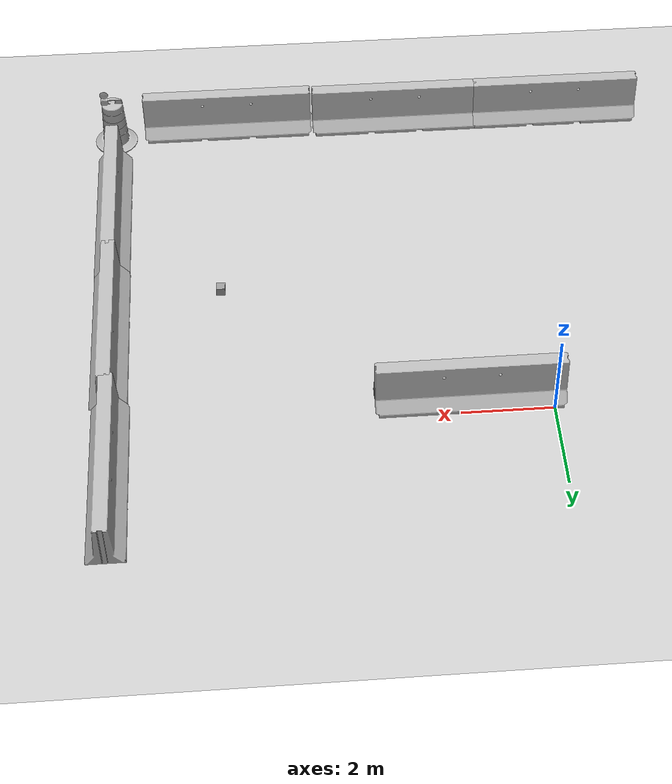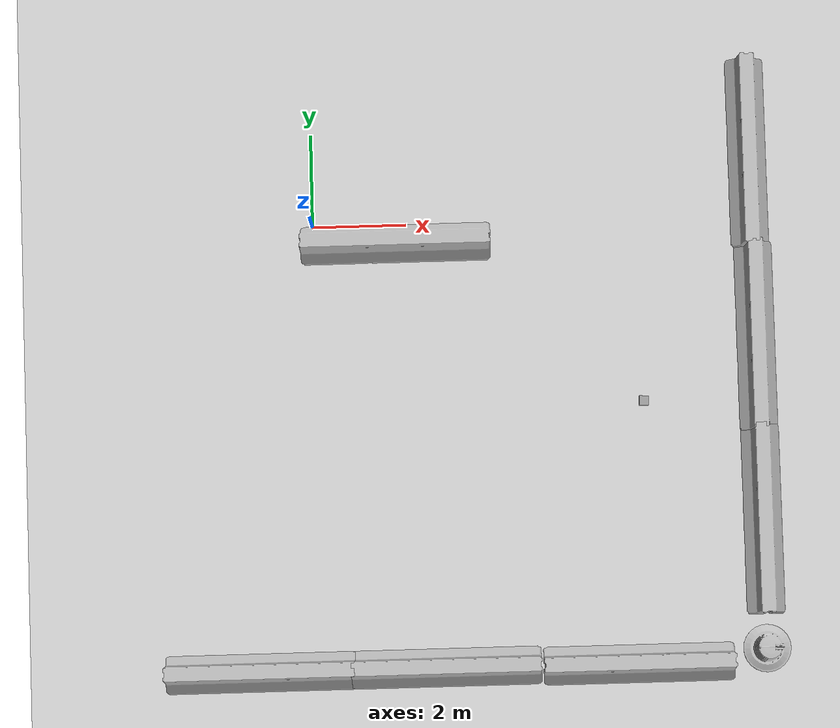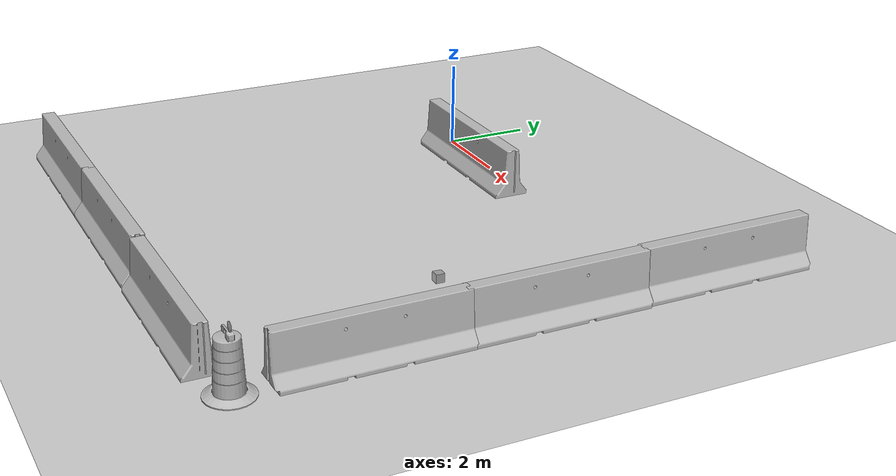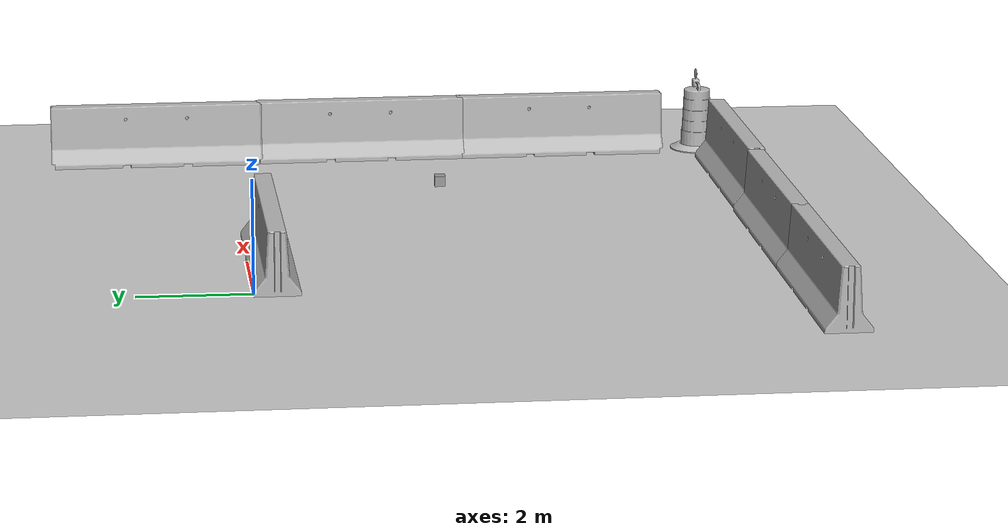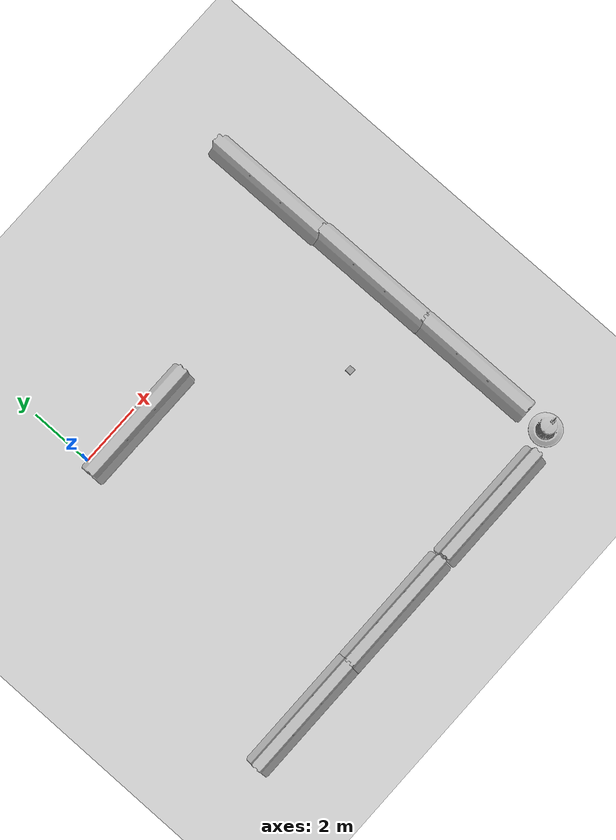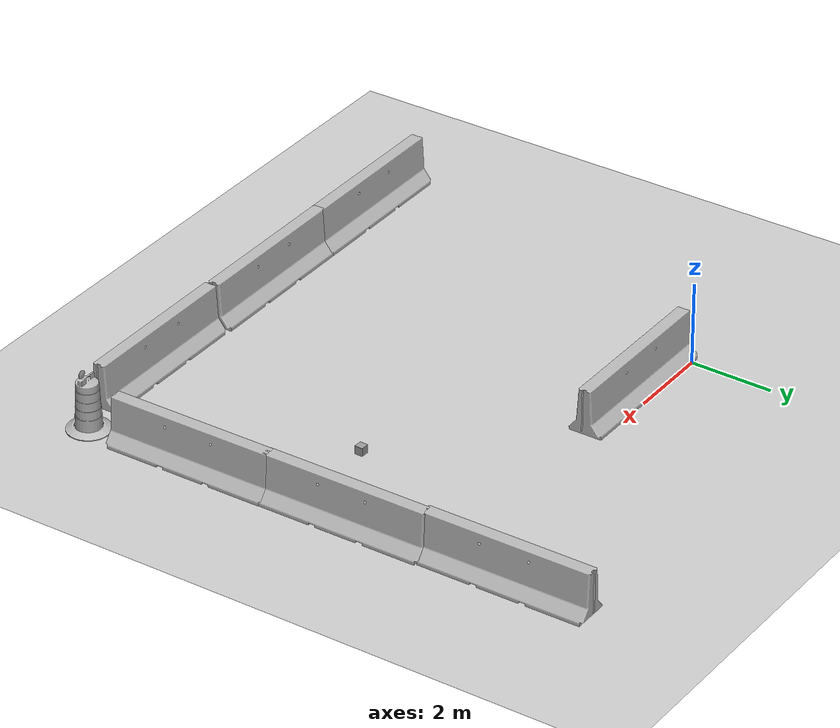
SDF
<sdf version="1.7">
 <world name="default" frame="map">
  <model name="ground_plane">
   <static>1</static>
   <link name="link">
    <collision name="collision">
     <geometry><plane><normal>0 0 1</normal><size>100 100</size></plane></geometry>
     <surface><friction><ode><mu>100</mu><mu2>50</mu2></ode></friction></surface>
    </collision>
    <visual name="visual">
     <cast_shadows>0</cast_shadows>
     <geometry><plane><normal>0 0 1</normal><size>100 100</size></plane></geometry>
     <material>
      <script><uri>file://media/materials/scripts/gazebo.material</uri><name>Gazebo/Grey</name></script>
     </material>
    </visual>
   </link>
  </model>
  <model name="jersey_barrier_clone_3_clone">
   <static>1</static>
   <link name="link">
    <visual name="visual">
     <geometry><mesh><uri>model://jersey_barrier/meshes/jersey_barrier.dae</uri></mesh></geometry>
    </visual>
    <collision name="upright">
     <pose>0 0 0.5715 0 -0 0</pose>
     <geometry><box><size>4.06542 0.3063 1.143</size></box></geometry>
    </collision>
    <collision name="base">
     <pose>0 0 0.032258 0 -0 0</pose>
     <geometry><box><size>4.06542 0.8107 0.064516</size></box></geometry>
    </collision>
    <collision name="base2">
     <pose>0 0 0.1 0 -0 0</pose>
     <geometry><box><size>4.06542 0.65 0.1</size></box></geometry>
    </collision>
    <collision name="base3">
     <pose>0 0 0.2 0 -0 0</pose>
     <geometry><box><size>4.06542 0.5 0.1</size></box></geometry>
    </collision>
    <collision name="left-angle">
     <pose>0 -0.224 0.2401 0.9 -0 0</pose>
     <geometry><box><size>4.06542 0.5 0.064516</size></box></geometry>
    </collision>
    <collision name="right-angle">
     <pose>0 0.224 0.2401 -0.9 0 0</pose>
     <geometry><box><size>4.06542 0.5 0.064516</size></box></geometry>
    </collision>
   </link>
   <pose>9.3727 1.33119 0 0 0 -1.56865</pose>
  </model>
  <model name="jersey_barrier_clone_3_clone_0">
   <static>1</static>
   <link name="link">
    <visual name="visual">
     <geometry><mesh><uri>model://jersey_barrier/meshes/jersey_barrier.dae</uri></mesh></geometry>
    </visual>
    <collision name="upright">
     <pose>0 0 0.5715 0 -0 0</pose>
     <geometry><box><size>4.06542 0.3063 1.143</size></box></geometry>
    </collision>
    <collision name="base">
     <pose>0 0 0.032258 0 -0 0</pose>
     <geometry><box><size>4.06542 0.8107 0.064516</size></box></geometry>
    </collision>
    <collision name="base2">
     <pose>0 0 0.1 0 -0 0</pose>
     <geometry><box><size>4.06542 0.65 0.1</size></box></geometry>
    </collision>
    <collision name="base3">
     <pose>0 0 0.2 0 -0 0</pose>
     <geometry><box><size>4.06542 0.5 0.1</size></box></geometry>
    </collision>
    <collision name="left-angle">
     <pose>0 -0.224 0.2401 0.9 -0 0</pose>
     <geometry><box><size>4.06542 0.5 0.064516</size></box></geometry>
    </collision>
    <collision name="right-angle">
     <pose>0 0.224 0.2401 -0.9 0 0</pose>
     <geometry><box><size>4.06542 0.5 0.064516</size></box></geometry>
    </collision>
   </link>
   <pose>9.4315 -2.6268 0 0 0 -1.56865</pose>
  </model>
  <model name="jersey_barrier_clone_3_clone_1">
   <static>1</static>
   <link name="link">
    <visual name="visual">
     <geometry><mesh><uri>model://jersey_barrier/meshes/jersey_barrier.dae</uri></mesh></geometry>
    </visual>
    <collision name="upright">
     <pose>0 0 0.5715 0 -0 0</pose>
     <geometry><box><size>4.06542 0.3063 1.143</size></box></geometry>
    </collision>
    <collision name="base">
     <pose>0 0 0.032258 0 -0 0</pose>
     <geometry><box><size>4.06542 0.8107 0.064516</size></box></geometry>
    </collision>
    <collision name="base2">
     <pose>0 0 0.1 0 -0 0</pose>
     <geometry><box><size>4.06542 0.65 0.1</size></box></geometry>
    </collision>
    <collision name="base3">
     <pose>0 0 0.2 0 -0 0</pose>
     <geometry><box><size>4.06542 0.5 0.1</size></box></geometry>
    </collision>
    <collision name="left-angle">
     <pose>0 -0.224 0.2401 0.9 -0 0</pose>
     <geometry><box><size>4.06542 0.5 0.064516</size></box></geometry>
    </collision>
    <collision name="right-angle">
     <pose>0 0.224 0.2401 -0.9 0 0</pose>
     <geometry><box><size>4.06542 0.5 0.064516</size></box></geometry>
    </collision>
   </link>
   <pose>9.44969 -6.53485 0 0 0 -1.56865</pose>
  </model>
  <model name="jersey_barrier_clone_2_clone">
   <static>1</static>
   <link name="link">
    <visual name="visual">
     <geometry><mesh><uri>model://jersey_barrier/meshes/jersey_barrier.dae</uri></mesh></geometry>
    </visual>
    <collision name="upright">
     <pose>0 0 0.5715 0 -0 0</pose>
     <geometry><box><size>4.06542 0.3063 1.143</size></box></geometry>
    </collision>
    <collision name="base">
     <pose>0 0 0.032258 0 -0 0</pose>
     <geometry><box><size>4.06542 0.8107 0.064516</size></box></geometry>
    </collision>
    <collision name="base2">
     <pose>0 0 0.1 0 -0 0</pose>
     <geometry><box><size>4.06542 0.65 0.1</size></box></geometry>
    </collision>
    <collision name="base3">
     <pose>0 0 0.2 0 -0 0</pose>
     <geometry><box><size>4.06542 0.5 0.1</size></box></geometry>
    </collision>
    <collision name="left-angle">
     <pose>0 -0.224 0.2401 0.9 -0 0</pose>
     <geometry><box><size>4.06542 0.5 0.064516</size></box></geometry>
    </collision>
    <collision name="right-angle">
     <pose>0 0.224 0.2401 -0.9 0 0</pose>
     <geometry><box><size>4.06542 0.5 0.064516</size></box></geometry>
    </collision>
   </link>
   <pose>6.70657 -9.54347 0 0 -0 0</pose>
  </model>
  <model name="jersey_barrier_clone_2_clone_0">
   <static>1</static>
   <link name="link">
    <visual name="visual">
     <geometry><mesh><uri>model://jersey_barrier/meshes/jersey_barrier.dae</uri></mesh></geometry>
    </visual>
    <collision name="upright">
     <pose>0 0 0.5715 0 -0 0</pose>
     <geometry><box><size>4.06542 0.3063 1.143</size></box></geometry>
    </collision>
    <collision name="base">
     <pose>0 0 0.032258 0 -0 0</pose>
     <geometry><box><size>4.06542 0.8107 0.064516</size></box></geometry>
    </collision>
    <collision name="base2">
     <pose>0 0 0.1 0 -0 0</pose>
     <geometry><box><size>4.06542 0.65 0.1</size></box></geometry>
    </collision>
    <collision name="base3">
     <pose>0 0 0.2 0 -0 0</pose>
     <geometry><box><size>4.06542 0.5 0.1</size></box></geometry>
    </collision>
    <collision name="left-angle">
     <pose>0 -0.224 0.2401 0.9 -0 0</pose>
     <geometry><box><size>4.06542 0.5 0.064516</size></box></geometry>
    </collision>
    <collision name="right-angle">
     <pose>0 0.224 0.2401 -0.9 0 0</pose>
     <geometry><box><size>4.06542 0.5 0.064516</size></box></geometry>
    </collision>
   </link>
   <pose>2.59616 -9.50928 0 0 -0 0</pose>
  </model>
  <model name="jersey_barrier_clone_2_clone_1">
   <static>1</static>
   <link name="link">
    <visual name="visual">
     <geometry><mesh><uri>model://jersey_barrier/meshes/jersey_barrier.dae</uri></mesh></geometry>
    </visual>
    <collision name="upright">
     <pose>0 0 0.5715 0 -0 0</pose>
     <geometry><box><size>4.06542 0.3063 1.143</size></box></geometry>
    </collision>
    <collision name="base">
     <pose>0 0 0.032258 0 -0 0</pose>
     <geometry><box><size>4.06542 0.8107 0.064516</size></box></geometry>
    </collision>
    <collision name="base2">
     <pose>0 0 0.1 0 -0 0</pose>
     <geometry><box><size>4.06542 0.65 0.1</size></box></geometry>
    </collision>
    <collision name="base3">
     <pose>0 0 0.2 0 -0 0</pose>
     <geometry><box><size>4.06542 0.5 0.1</size></box></geometry>
    </collision>
    <collision name="left-angle">
     <pose>0 -0.224 0.2401 0.9 -0 0</pose>
     <geometry><box><size>4.06542 0.5 0.064516</size></box></geometry>
    </collision>
    <collision name="right-angle">
     <pose>0 0.224 0.2401 -0.9 0 0</pose>
     <geometry><box><size>4.06542 0.5 0.064516</size></box></geometry>
    </collision>
   </link>
   <pose>-1.33414 -9.50852 0 0 -0 0</pose>
  </model>
  <model name="Construction Barrel_3">
   <link name="link">
    <inertial>
     <pose>0 0 0.4 0 -0 0</pose>
     <mass>500</mass>
     <inertia><ixx>51.2096</ixx><iyy>51.2096</iyy><izz>25</izz><ixy>0</ixy><ixz>0</ixz><iyz>0</iyz></inertia>
    </inertial>
    <collision name="collision">
     <geometry><mesh><uri>model://construction_barrel/meshes/construction_barrel.dae</uri></mesh></geometry>
    </collision>
    <visual name="visual">
     <geometry><mesh><uri>model://construction_barrel/meshes/construction_barrel.dae</uri></mesh></geometry>
    </visual>
   </link>
   <pose>9.45363 -9.2943 -1e-06 3e-06 -0 -4.5e-05</pose>
  </model>
  <model name="jersey_barrier_0_clone_1_clone">
   <static>1</static>
   <link name="link">
    <visual name="visual">
     <geometry><mesh><uri>model://jersey_barrier/meshes/jersey_barrier.dae</uri></mesh></geometry>
    </visual>
    <collision name="upright">
     <pose>0 0 0.5715 0 -0 0</pose>
     <geometry><box><size>4.06542 0.3063 1.143</size></box></geometry>
    </collision>
    <collision name="base">
     <pose>0 0 0.032258 0 -0 0</pose>
     <geometry><box><size>4.06542 0.8107 0.064516</size></box></geometry>
    </collision>
    <collision name="base2">
     <pose>0 0 0.1 0 -0 0</pose>
     <geometry><box><size>4.06542 0.65 0.1</size></box></geometry>
    </collision>
    <collision name="base3">
     <pose>0 0 0.2 0 -0 0</pose>
     <geometry><box><size>4.06542 0.5 0.1</size></box></geometry>
    </collision>
    <collision name="left-angle">
     <pose>0 -0.224 0.2401 0.9 -0 0</pose>
     <geometry><box><size>4.06542 0.5 0.064516</size></box></geometry>
    </collision>
    <collision name="right-angle">
     <pose>0 0.224 0.2401 -0.9 0 0</pose>
     <geometry><box><size>4.06542 0.5 0.064516</size></box></geometry>
    </collision>
   </link>
   <pose>1.76519 -0.393386 0 0 -0 0</pose>
  </model>
  <model name="marker12_box">
   <link name="marker">
    <inertial>
     <mass>0.1</mass>
     <inertia><ixx>0</ixx><ixy>0</ixy><ixz>0</ixz><iyy>0</iyy><iyz>0</iyz><izz>0</izz></inertia>
    </inertial>
    <self_collide>1</self_collide>
    <pose>-0.76428 -0.101106 0.120004 -0.015494 1.56996 -0.015507</pose>
    <visual name="visual">
     <geometry><box><size>0.2 0.2 0.001</size></box></geometry>
     <material>
      <script>
       <uri>model://marker12/material/scripts</uri>
       <uri>model://marker12/material/textures</uri>
       <name>Aruco/marker12</name>
      </script>
      <shader type="pixel"><normal_map>__default__</normal_map></shader>
      <emissive>0 0 0 1</emissive>
      <ambient>1 1 1 1</ambient>
      <diffuse>1 1 1 1</diffuse>
      <specular>0 0 0 1</specular>
     </material>
    </visual>
    <collision name="collision">
     <geometry><box><size>0.2 0.2 0.02</size></box></geometry>
     <surface>
      <friction>
       <ode><mu>1</mu><mu2>1</mu2><fdir1>0 0 0</fdir1><slip1>0</slip1><slip2>0</slip2></ode>
       <torsional>
        <coefficient>1</coefficient>
        <patch_radius>0</patch_radius>
        <surface_radius>0</surface_radius>
        <use_patch_radius>1</use_patch_radius>
        <ode><slip>0</slip></ode>
       </torsional>
      </friction>
      <bounce><restitution_coefficient>0</restitution_coefficient><threshold>1e+06</threshold></bounce>
      <contact>
       <collide_without_contact>0</collide_without_contact>
       <collide_without_contact_bitmask>1</collide_without_contact_bitmask>
       <collide_bitmask>1</collide_bitmask>
       <ode>
        <soft_cfm>0</soft_cfm>
        <soft_erp>0.2</soft_erp>
        <kp>1e+13</kp>
        <kd>1</kd>
        <max_vel>0.01</max_vel>
        <min_depth>0</min_depth>
       </ode>
       <bullet>
        <split_impulse>1</split_impulse>
        <split_impulse_penetration_threshold>-0.01</split_impulse_penetration_threshold>
        <soft_cfm>0</soft_cfm>
        <soft_erp>0.2</soft_erp>
        <kp>1e+13</kp>
        <kd>1</kd>
       </bullet>
      </contact>
     </surface>
    </collision>
   </link>
   <link name="link_1">
    <inertial>
     <mass>1</mass>
     <inertia>
      <ixx>0.166667</ixx>
      <ixy>0</ixy>
      <ixz>0</ixz>
      <iyy>0.166667</iyy>
      <iyz>0</iyz>
      <izz>0.166667</izz>
     </inertia>
    </inertial>
    <pose>-0.86428 -0.101106 0.12 -1.3e-05 -4.2e-05 0</pose>
    <visual name="visual">
     <geometry><box><size>0.2 0.2 0.2</size></box></geometry>
     <material>
      <lighting>1</lighting>
      <script><uri>file://media/materials/scripts/gazebo.material</uri><name>Gazebo/Grey</name></script>
      <shader type="pixel"><normal_map>__default__</normal_map></shader>
      <emissive>0 0 0 1</emissive>
      <ambient>0.3 0.3 0.3 1</ambient>
      <diffuse>0.7 0.7 0.7 1</diffuse>
      <specular>0.01 0.01 0.01 1</specular>
     </material>
    </visual>
    <collision name="collision">
     <geometry><box><size>0.2 0.2 0.2</size></box></geometry>
     <surface>
      <friction>
       <ode><mu>1</mu><mu2>1</mu2><fdir1>0 0 0</fdir1><slip1>0</slip1><slip2>0</slip2></ode>
       <torsional>
        <coefficient>1</coefficient>
        <patch_radius>0</patch_radius>
        <surface_radius>0</surface_radius>
        <use_patch_radius>1</use_patch_radius>
        <ode><slip>0</slip></ode>
       </torsional>
      </friction>
      <bounce><restitution_coefficient>0</restitution_coefficient><threshold>1e+06</threshold></bounce>
      <contact>
       <collide_without_contact>0</collide_without_contact>
       <collide_without_contact_bitmask>1</collide_without_contact_bitmask>
       <collide_bitmask>1</collide_bitmask>
       <ode>
        <soft_cfm>0</soft_cfm>
        <soft_erp>0.2</soft_erp>
        <kp>1e+13</kp>
        <kd>1</kd>
        <max_vel>0.01</max_vel>
        <min_depth>0</min_depth>
       </ode>
       <bullet>
        <split_impulse>1</split_impulse>
        <split_impulse_penetration_threshold>-0.01</split_impulse_penetration_threshold>
        <soft_cfm>0</soft_cfm>
        <soft_erp>0.2</soft_erp>
        <kp>1e+13</kp>
        <kd>1</kd>
       </bullet>
      </contact>
     </surface>
    </collision>
   </link>
   <joint name="link_1_JOINT_3" type="fixed">
    <parent>link_1</parent>
    <child>marker</child>
    <physics>
     <ode><limit><cfm>0</cfm><erp>0.2</erp></limit><suspension><cfm>0</cfm><erp>0.2</erp></suspension></ode>
    </physics>
   </joint>
   <static>0</static>
   <pose>7.05689 -4.80102 -0.020018 6e-06 1.8e-05 -1.60778</pose>
  </model>
 </world>
</sdf>
